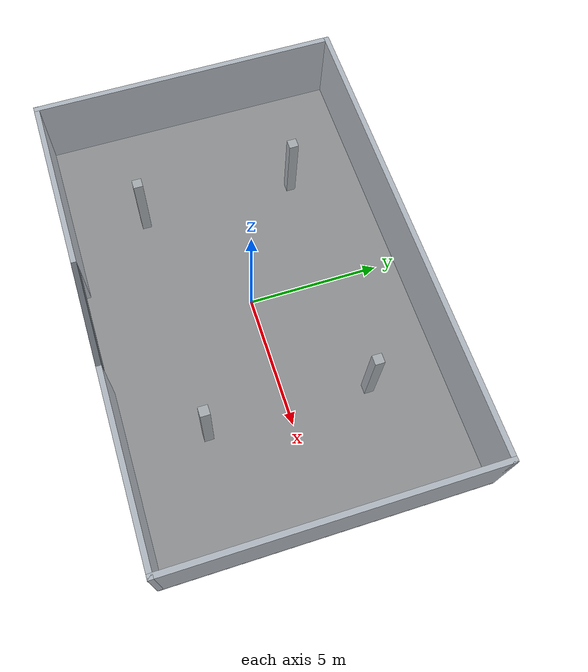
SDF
<sdf version="1.6">
 <world name="warehouse">
  <physics name="1ms" type="ignored">
   <max_step_size>0.001</max_step_size>
   <real_time_factor>1.0</real_time_factor>
  </physics>
  <plugin filename="ignition-gazebo-physics-system" name="gz::sim::systems::Physics"/>
  <plugin filename="ignition-gazebo-user-commands-system" name="gz::sim::systems::UserCommands"/>
  <plugin filename="ignition-gazebo-scene-broadcaster-system" name="gz::sim::systems::SceneBroadcaster"/>
  <plugin filename="ignition-gazebo-contact-system" name="gz::sim::systems::Contact"/>
  <plugin filename="ignition-gazebo-sensors-system" name="gz::sim::systems::Sensors">
   <render_engine>ogre2</render_engine>
  </plugin>
  <light type="directional" name="sun">
   <pose>0 0 12 0 0 0</pose>
   <diffuse>0.8 0.8 0.8 1</diffuse>
   <specular>0.2 0.2 0.2 1</specular>
   <attenuation>
    <range>1000</range>
    <constant>0.9</constant>
    <linear>0.01</linear>
    <quadratic>0.001</quadratic>
   </attenuation>
   <direction>-0.4 0.2 -0.9</direction>
  </light>
  <light type="point" name="ceiling_light_center">
   <pose>0 0 4.8 0 0 0</pose>
   <diffuse>0.9 0.9 0.85 1</diffuse>
   <specular>0.3 0.3 0.3 1</specular>
   <attenuation>
    <range>20</range>
    <constant>0.5</constant>
    <linear>0.02</linear>
    <quadratic>0.001</quadratic>
   </attenuation>
  </light>
  <light type="point" name="ceiling_light_west">
   <pose>-5 0 4.8 0 0 0</pose>
   <diffuse>0.8 0.8 0.78 1</diffuse>
   <specular>0.2 0.2 0.2 1</specular>
   <attenuation>
    <range>18</range>
    <constant>0.5</constant>
    <linear>0.02</linear>
    <quadratic>0.001</quadratic>
   </attenuation>
  </light>
  <light type="point" name="ceiling_light_east">
   <pose>5 0 4.8 0 0 0</pose>
   <diffuse>0.8 0.8 0.78 1</diffuse>
   <specular>0.2 0.2 0.2 1</specular>
   <attenuation>
    <range>18</range>
    <constant>0.5</constant>
    <linear>0.02</linear>
    <quadratic>0.001</quadratic>
   </attenuation>
  </light>
  <model name="warehouse_floor">
   <static>true</static>
   <pose>0 0 -0.05 0 0 0</pose>
   <link name="link">
    <collision name="collision"><geometry><box><size>18 12 0.10</size></box></geometry></collision>
    <visual name="visual">
     <geometry><box><size>18 12 0.10</size></box></geometry>
     <material>
      <ambient>0.42 0.43 0.44 1</ambient>
      <diffuse>0.56 0.57 0.58 1</diffuse>
      <specular>0.15 0.15 0.15 1</specular>
     </material>
    </visual>
   </link>
  </model>
  <model name="wall_north">
   <static>true</static>
   <pose>0 5.9 1.5 0 0 0</pose>
   <link name="link">
    <collision name="collision"><geometry><box><size>18 0.2 3.0</size></box></geometry></collision>
    <visual name="visual">
     <geometry><box><size>18 0.2 3.0</size></box></geometry>
     <material><ambient>0.55 0.58 0.62 1</ambient><diffuse>0.70 0.73 0.76 1</diffuse></material>
    </visual>
   </link>
  </model>
  <model name="wall_south_left">
   <static>true</static>
   <pose>-5.5 -5.9 1.5 0 0 0</pose>
   <link name="link">
    <collision name="collision"><geometry><box><size>7 0.2 3.0</size></box></geometry></collision>
    <visual name="visual">
     <geometry><box><size>7 0.2 3.0</size></box></geometry>
     <material><ambient>0.55 0.58 0.62 1</ambient><diffuse>0.70 0.73 0.76 1</diffuse></material>
    </visual>
   </link>
  </model>
  <model name="wall_south_right">
   <static>true</static>
   <pose>5.5 -5.9 1.5 0 0 0</pose>
   <link name="link">
    <collision name="collision"><geometry><box><size>7 0.2 3.0</size></box></geometry></collision>
    <visual name="visual">
     <geometry><box><size>7 0.2 3.0</size></box></geometry>
     <material><ambient>0.55 0.58 0.62 1</ambient><diffuse>0.70 0.73 0.76 1</diffuse></material>
    </visual>
   </link>
  </model>
  <model name="loading_door_header">
   <static>true</static>
   <pose>0 -5.9 2.65 0 0 0</pose>
   <link name="link">
    <collision name="collision"><geometry><box><size>4 0.2 0.70</size></box></geometry></collision>
    <visual name="visual">
     <geometry><box><size>4 0.2 0.70</size></box></geometry>
     <material><ambient>0.25 0.27 0.30 1</ambient><diffuse>0.38 0.40 0.43 1</diffuse></material>
    </visual>
   </link>
  </model>
  <model name="wall_west">
   <static>true</static>
   <pose>-8.9 0 1.5 0 0 0</pose>
   <link name="link">
    <collision name="collision"><geometry><box><size>0.2 12 3.0</size></box></geometry></collision>
    <visual name="visual">
     <geometry><box><size>0.2 12 3.0</size></box></geometry>
     <material><ambient>0.55 0.58 0.62 1</ambient><diffuse>0.70 0.73 0.76 1</diffuse></material>
    </visual>
   </link>
  </model>
  <model name="wall_east">
   <static>true</static>
   <pose>8.9 0 1.5 0 0 0</pose>
   <link name="link">
    <collision name="collision"><geometry><box><size>0.2 12 3.0</size></box></geometry></collision>
    <visual name="visual">
     <geometry><box><size>0.2 12 3.0</size></box></geometry>
     <material><ambient>0.55 0.58 0.62 1</ambient><diffuse>0.70 0.73 0.76 1</diffuse></material>
    </visual>
   </link>
  </model>
  <model name="column_1">
   <static>true</static>
   <pose>-4.5 3.0 1.5 0 0 0</pose>
   <link name="link">
    <collision name="collision"><geometry><box><size>0.35 0.35 3.0</size></box></geometry></collision>
    <visual name="visual">
     <geometry><box><size>0.35 0.35 3.0</size></box></geometry>
     <material><ambient>0.50 0.52 0.55 1</ambient><diffuse>0.66 0.68 0.70 1</diffuse></material>
    </visual>
   </link>
  </model>
  <model name="column_2">
   <static>true</static>
   <pose>4.5 3.0 1.5 0 0 0</pose>
   <link name="link">
    <collision name="collision"><geometry><box><size>0.35 0.35 3.0</size></box></geometry></collision>
    <visual name="visual">
     <geometry><box><size>0.35 0.35 3.0</size></box></geometry>
     <material><ambient>0.50 0.52 0.55 1</ambient><diffuse>0.66 0.68 0.70 1</diffuse></material>
    </visual>
   </link>
  </model>
  <model name="column_3">
   <static>true</static>
   <pose>-4.5 -3.0 1.5 0 0 0</pose>
   <link name="link">
    <collision name="collision"><geometry><box><size>0.35 0.35 3.0</size></box></geometry></collision>
    <visual name="visual">
     <geometry><box><size>0.35 0.35 3.0</size></box></geometry>
     <material><ambient>0.50 0.52 0.55 1</ambient><diffuse>0.66 0.68 0.70 1</diffuse></material>
    </visual>
   </link>
  </model>
  <model name="column_4">
   <static>true</static>
   <pose>4.5 -3.0 1.5 0 0 0</pose>
   <link name="link">
    <collision name="collision"><geometry><box><size>0.35 0.35 3.0</size></box></geometry></collision>
    <visual name="visual">
     <geometry><box><size>0.35 0.35 3.0</size></box></geometry>
     <material><ambient>0.50 0.52 0.55 1</ambient><diffuse>0.66 0.68 0.70 1</diffuse></material>
    </visual>
   </link>
  </model>
 </world>
</sdf>
